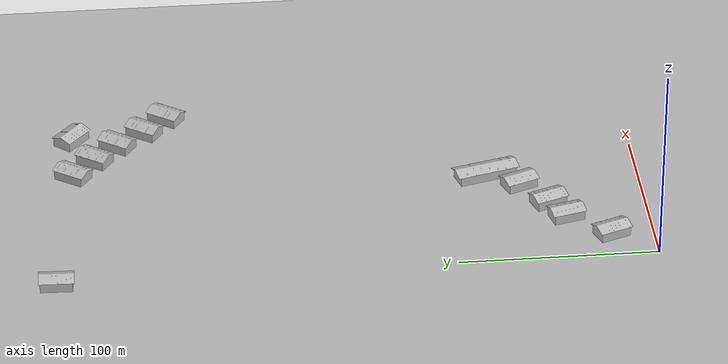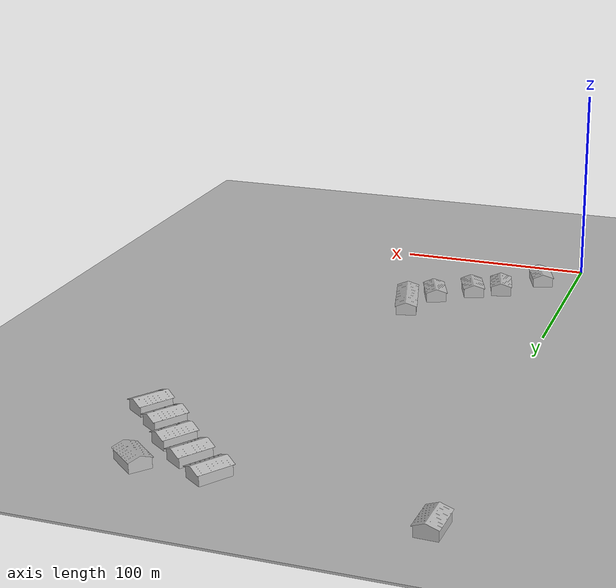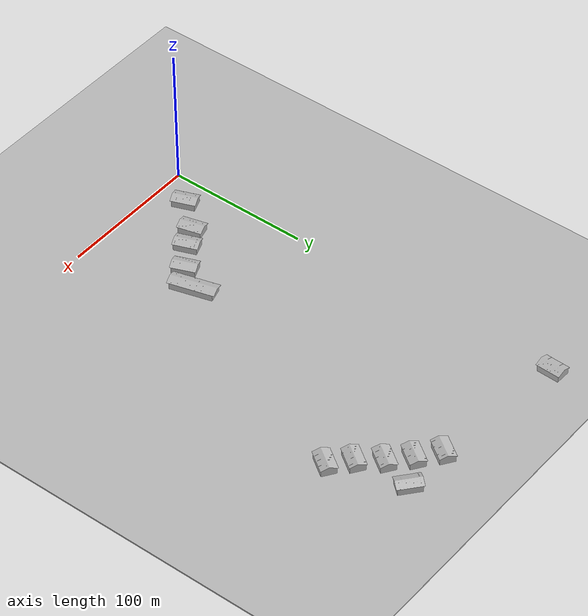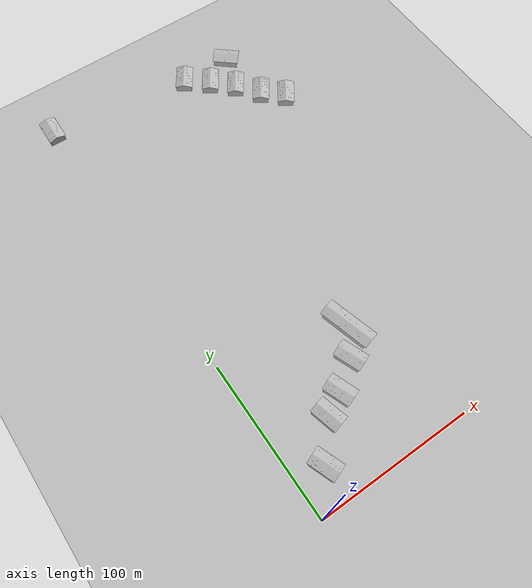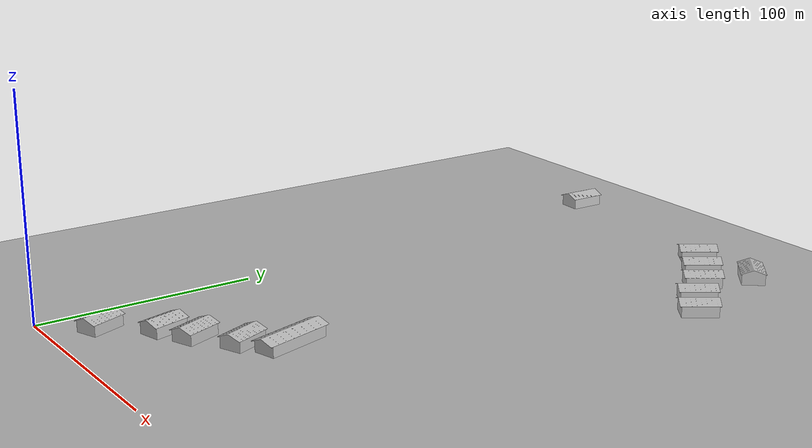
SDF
<sdf version="1.7">
 <world name="default">
  <model name="ground_plane">
   <static>1</static>
   <link name="link">
    <collision name="collision">
     <geometry><mesh><uri>model://ground_plane/scripts/plane.dae</uri><normal>0 0 1</normal></mesh></geometry>
     <surface><friction><ode><mu>100</mu><mu2>50</mu2></ode></friction></surface>
    </collision>
    <visual name="visual">
     <geometry><mesh><uri>model://ground_plane/scripts/plane.dae</uri><normal>0 0 1</normal></mesh></geometry>
     <material>
      <lighting>1</lighting>
      <script><uri>model://ground_plane/scripts/plane.jpg</uri><name>__default__</name></script>
      <shader type="pixel"/>
     </material>
    </visual>
   </link>
  </model>
  <model name="farmhouse_clone">
   <static>1</static>
   <link name="link_0">
    <inertial>
     <mass>1</mass>
     <inertia>
      <ixx>0.166667</ixx>
      <ixy>0</ixy>
      <ixz>0</ixz>
      <iyy>0.166667</iyy>
      <iyz>0</iyz>
      <izz>0.166667</izz>
     </inertia>
    </inertial>
    <pose>-0 -3e-06 0 0 -0 0</pose>
    <visual name="visual">
     <geometry><mesh><uri>model://farmhouse/scripts/farmhouse.dae</uri><scale>8 8 5</scale></mesh></geometry>
     <material>
      <lighting>1</lighting>
      <script><uri>model://farmhouse/scripts/farmhouse.jpg</uri><name>__default__</name></script>
      <shader type="pixel"/>
     </material>
    </visual>
    <collision name="collision">
     <geometry><mesh><uri>model://farmhouse/scripts/farmhouse.dae</uri><scale>8 8 5</scale></mesh></geometry>
     <surface>
      <friction>
       <ode><mu>1</mu><mu2>1</mu2><fdir1>0 0 0</fdir1><slip1>0</slip1><slip2>0</slip2></ode>
       <torsional>
        <coefficient>1</coefficient>
        <patch_radius>0</patch_radius>
        <surface_radius>0</surface_radius>
        <use_patch_radius>1</use_patch_radius>
        <ode><slip>0</slip></ode>
       </torsional>
      </friction>
      <bounce><restitution_coefficient>0</restitution_coefficient><threshold>1e+06</threshold></bounce>
      <contact>
       <collide_without_contact>0</collide_without_contact>
       <collide_without_contact_bitmask>1</collide_without_contact_bitmask>
       <collide_bitmask>1</collide_bitmask>
       <ode>
        <soft_cfm>0</soft_cfm>
        <soft_erp>0.2</soft_erp>
        <kp>1e+13</kp>
        <kd>1</kd>
        <max_vel>0.01</max_vel>
        <min_depth>0</min_depth>
       </ode>
       <bullet>
        <split_impulse>1</split_impulse>
        <split_impulse_penetration_threshold>-0.01</split_impulse_penetration_threshold>
        <soft_cfm>0</soft_cfm>
        <soft_erp>0.2</soft_erp>
        <kp>1e+13</kp>
        <kd>1</kd>
       </bullet>
      </contact>
     </surface>
    </collision>
   </link>
   <static>0</static>
   <pose>66.9059 61.4085 0 0 0 -1.19228</pose>
  </model>
  <model name="farmhouse2_clone">
   <static>1</static>
   <link name="link_0">
    <inertial>
     <mass>1</mass>
     <inertia>
      <ixx>0.166667</ixx>
      <ixy>0</ixy>
      <ixz>0</ixz>
      <iyy>0.166667</iyy>
      <iyz>0</iyz>
      <izz>0.166667</izz>
     </inertia>
    </inertial>
    <pose>-0 -3e-06 0 0 -0 0</pose>
    <visual name="visual">
     <geometry><mesh><uri>model://farmhouse2/scripts/farmhouse.dae</uri><scale>8 8 5</scale></mesh></geometry>
     <material>
      <lighting>1</lighting>
      <script><uri>model://farmhouse2/scripts/farmhouse.jpg</uri><name>__default__</name></script>
      <shader type="pixel"/>
     </material>
    </visual>
    <collision name="collision">
     <geometry><mesh><uri>model://farmhouse/scripts/farmhouse.dae</uri><scale>8 8 5</scale></mesh></geometry>
     <surface>
      <friction>
       <ode><mu>1</mu><mu2>1</mu2><fdir1>0 0 0</fdir1><slip1>0</slip1><slip2>0</slip2></ode>
       <torsional>
        <coefficient>1</coefficient>
        <patch_radius>0</patch_radius>
        <surface_radius>0</surface_radius>
        <use_patch_radius>1</use_patch_radius>
        <ode><slip>0</slip></ode>
       </torsional>
      </friction>
      <bounce><restitution_coefficient>0</restitution_coefficient><threshold>1e+06</threshold></bounce>
      <contact>
       <collide_without_contact>0</collide_without_contact>
       <collide_without_contact_bitmask>1</collide_without_contact_bitmask>
       <collide_bitmask>1</collide_bitmask>
       <ode>
        <soft_cfm>0</soft_cfm>
        <soft_erp>0.2</soft_erp>
        <kp>1e+13</kp>
        <kd>1</kd>
        <max_vel>0.01</max_vel>
        <min_depth>0</min_depth>
       </ode>
       <bullet>
        <split_impulse>1</split_impulse>
        <split_impulse_penetration_threshold>-0.01</split_impulse_penetration_threshold>
        <soft_cfm>0</soft_cfm>
        <soft_erp>0.2</soft_erp>
        <kp>1e+13</kp>
        <kd>1</kd>
       </bullet>
      </contact>
     </surface>
    </collision>
   </link>
   <static>0</static>
   <pose>49.6007 48.8831 0 0 0 -1.20661</pose>
  </model>
  <model name="farmhouse2_clone_clone">
   <static>1</static>
   <link name="link_0">
    <inertial>
     <mass>1</mass>
     <inertia>
      <ixx>0.166667</ixx>
      <ixy>0</ixy>
      <ixz>0</ixz>
      <iyy>0.166667</iyy>
      <iyz>0</iyz>
      <izz>0.166667</izz>
     </inertia>
    </inertial>
    <pose>-0 -3e-06 0 0 -0 0</pose>
    <visual name="visual">
     <geometry><mesh><uri>model://farmhouse2/scripts/farmhouse.dae</uri><scale>8 8 5</scale></mesh></geometry>
     <material>
      <lighting>1</lighting>
      <script><uri>model://farmhouse2/scripts/farmhouse.jpg</uri><name>__default__</name></script>
      <shader type="pixel"/>
     </material>
    </visual>
    <collision name="collision">
     <geometry><mesh><uri>model://farmhouse/scripts/farmhouse.dae</uri><scale>8 8 5</scale></mesh></geometry>
     <surface>
      <friction>
       <ode><mu>1</mu><mu2>1</mu2><fdir1>0 0 0</fdir1><slip1>0</slip1><slip2>0</slip2></ode>
       <torsional>
        <coefficient>1</coefficient>
        <patch_radius>0</patch_radius>
        <surface_radius>0</surface_radius>
        <use_patch_radius>1</use_patch_radius>
        <ode><slip>0</slip></ode>
       </torsional>
      </friction>
      <bounce><restitution_coefficient>0</restitution_coefficient><threshold>1e+06</threshold></bounce>
      <contact>
       <collide_without_contact>0</collide_without_contact>
       <collide_without_contact_bitmask>1</collide_without_contact_bitmask>
       <collide_bitmask>1</collide_bitmask>
       <ode>
        <soft_cfm>0</soft_cfm>
        <soft_erp>0.2</soft_erp>
        <kp>1e+13</kp>
        <kd>1</kd>
        <max_vel>0.01</max_vel>
        <min_depth>0</min_depth>
       </ode>
       <bullet>
        <split_impulse>1</split_impulse>
        <split_impulse_penetration_threshold>-0.01</split_impulse_penetration_threshold>
        <soft_cfm>0</soft_cfm>
        <soft_erp>0.2</soft_erp>
        <kp>1e+13</kp>
        <kd>1</kd>
       </bullet>
      </contact>
     </surface>
    </collision>
   </link>
   <static>0</static>
   <pose>18.3879 21.3115 0 0 0 -1.20661</pose>
  </model>
  <model name="farmhouse_clone_clone">
   <static>1</static>
   <link name="link_0">
    <inertial>
     <mass>1</mass>
     <inertia>
      <ixx>0.166667</ixx>
      <ixy>0</ixy>
      <ixz>0</ixz>
      <iyy>0.166667</iyy>
      <iyz>0</iyz>
      <izz>0.166667</izz>
     </inertia>
    </inertial>
    <pose>-0 -3e-06 0 0 -0 0</pose>
    <visual name="visual">
     <geometry><mesh><uri>model://farmhouse/scripts/farmhouse.dae</uri><scale>8 8 5</scale></mesh></geometry>
     <material>
      <lighting>1</lighting>
      <script><uri>model://farmhouse/scripts/farmhouse.jpg</uri><name>__default__</name></script>
      <shader type="pixel"/>
     </material>
    </visual>
    <collision name="collision">
     <geometry><mesh><uri>model://farmhouse/scripts/farmhouse.dae</uri><scale>8 8 5</scale></mesh></geometry>
     <surface>
      <friction>
       <ode><mu>1</mu><mu2>1</mu2><fdir1>0 0 0</fdir1><slip1>0</slip1><slip2>0</slip2></ode>
       <torsional>
        <coefficient>1</coefficient>
        <patch_radius>0</patch_radius>
        <surface_radius>0</surface_radius>
        <use_patch_radius>1</use_patch_radius>
        <ode><slip>0</slip></ode>
       </torsional>
      </friction>
      <bounce><restitution_coefficient>0</restitution_coefficient><threshold>1e+06</threshold></bounce>
      <contact>
       <collide_without_contact>0</collide_without_contact>
       <collide_without_contact_bitmask>1</collide_without_contact_bitmask>
       <collide_bitmask>1</collide_bitmask>
       <ode>
        <soft_cfm>0</soft_cfm>
        <soft_erp>0.2</soft_erp>
        <kp>1e+13</kp>
        <kd>1</kd>
        <max_vel>0.01</max_vel>
        <min_depth>0</min_depth>
       </ode>
       <bullet>
        <split_impulse>1</split_impulse>
        <split_impulse_penetration_threshold>-0.01</split_impulse_penetration_threshold>
        <soft_cfm>0</soft_cfm>
        <soft_erp>0.2</soft_erp>
        <kp>1e+13</kp>
        <kd>1</kd>
       </bullet>
      </contact>
     </surface>
    </collision>
   </link>
   <static>0</static>
   <pose>35.8615 41.5925 0 0 0 -1.31658</pose>
  </model>
  <model name="farmhouse1_clone">
   <static>1</static>
   <link name="link_0">
    <inertial>
     <mass>1</mass>
     <inertia>
      <ixx>0.166667</ixx>
      <ixy>0</ixy>
      <ixz>0</ixz>
      <iyy>0.166667</iyy>
      <iyz>0</iyz>
      <izz>0.166667</izz>
     </inertia>
    </inertial>
    <pose>-0 -3e-06 0 0 -0 0</pose>
    <visual name="visual">
     <geometry><mesh><uri>model://farmhouse1/scripts/farmhouse.dae</uri><scale>15 8 5</scale></mesh></geometry>
     <material>
      <lighting>1</lighting>
      <script><uri>model://farmhouse1/scripts/farmhouse.jpg</uri><name>__default__</name></script>
      <shader type="pixel"/>
     </material>
    </visual>
    <collision name="collision">
     <geometry><mesh><uri>model://farmhouse1/scripts/farmhouse.dae</uri><scale>15 8 5</scale></mesh></geometry>
     <surface>
      <friction>
       <ode><mu>1</mu><mu2>1</mu2><fdir1>0 0 0</fdir1><slip1>0</slip1><slip2>0</slip2></ode>
       <torsional>
        <coefficient>1</coefficient>
        <patch_radius>0</patch_radius>
        <surface_radius>0</surface_radius>
        <use_patch_radius>1</use_patch_radius>
        <ode><slip>0</slip></ode>
       </torsional>
      </friction>
      <bounce><restitution_coefficient>0</restitution_coefficient><threshold>1e+06</threshold></bounce>
      <contact>
       <collide_without_contact>0</collide_without_contact>
       <collide_without_contact_bitmask>1</collide_without_contact_bitmask>
       <collide_bitmask>1</collide_bitmask>
       <ode>
        <soft_cfm>0</soft_cfm>
        <soft_erp>0.2</soft_erp>
        <kp>1e+13</kp>
        <kd>1</kd>
        <max_vel>0.01</max_vel>
        <min_depth>0</min_depth>
       </ode>
       <bullet>
        <split_impulse>1</split_impulse>
        <split_impulse_penetration_threshold>-0.01</split_impulse_penetration_threshold>
        <soft_cfm>0</soft_cfm>
        <soft_erp>0.2</soft_erp>
        <kp>1e+13</kp>
        <kd>1</kd>
       </bullet>
      </contact>
     </surface>
    </collision>
   </link>
   <static>0</static>
   <pose>77.5442 77.3021 0 0 0 -1.30178</pose>
  </model>
  <model name="farmhouse3_clone">
   <static>1</static>
   <link name="link_0">
    <inertial>
     <mass>1</mass>
     <inertia>
      <ixx>0.166667</ixx>
      <ixy>0</ixy>
      <ixz>0</ixz>
      <iyy>0.166667</iyy>
      <iyz>0</iyz>
      <izz>0.166667</izz>
     </inertia>
    </inertial>
    <pose>-0 -3e-06 0 0 -0 0</pose>
    <visual name="visual">
     <geometry><mesh><uri>model://farmhouse3/scripts/farmhouse.dae</uri><scale>8 8 5</scale></mesh></geometry>
     <material>
      <lighting>1</lighting>
      <script><uri>model://farmhouse3/scripts/farmhouse.jpg</uri><name>__default__</name></script>
      <shader type="pixel"/>
     </material>
    </visual>
    <collision name="collision">
     <geometry><mesh><uri>model://farmhouse/scripts/farmhouse.dae</uri><scale>8 8 5</scale></mesh></geometry>
     <surface>
      <friction>
       <ode><mu>1</mu><mu2>1</mu2><fdir1>0 0 0</fdir1><slip1>0</slip1><slip2>0</slip2></ode>
       <torsional>
        <coefficient>1</coefficient>
        <patch_radius>0</patch_radius>
        <surface_radius>0</surface_radius>
        <use_patch_radius>1</use_patch_radius>
        <ode><slip>0</slip></ode>
       </torsional>
      </friction>
      <bounce><restitution_coefficient>0</restitution_coefficient><threshold>1e+06</threshold></bounce>
      <contact>
       <collide_without_contact>0</collide_without_contact>
       <collide_without_contact_bitmask>1</collide_without_contact_bitmask>
       <collide_bitmask>1</collide_bitmask>
       <ode>
        <soft_cfm>0</soft_cfm>
        <soft_erp>0.2</soft_erp>
        <kp>1e+13</kp>
        <kd>1</kd>
        <max_vel>0.01</max_vel>
        <min_depth>0</min_depth>
       </ode>
       <bullet>
        <split_impulse>1</split_impulse>
        <split_impulse_penetration_threshold>-0.01</split_impulse_penetration_threshold>
        <soft_cfm>0</soft_cfm>
        <soft_erp>0.2</soft_erp>
        <kp>1e+13</kp>
        <kd>1</kd>
       </bullet>
      </contact>
     </surface>
    </collision>
   </link>
   <static>0</static>
   <pose>109.267 274.04 0 0 -0 0.963687</pose>
  </model>
  <model name="farmhouse3_clone_0">
   <static>1</static>
   <link name="link_0">
    <inertial>
     <mass>1</mass>
     <inertia>
      <ixx>0.166667</ixx>
      <ixy>0</ixy>
      <ixz>0</ixz>
      <iyy>0.166667</iyy>
      <iyz>0</iyz>
      <izz>0.166667</izz>
     </inertia>
    </inertial>
    <pose>-0 -3e-06 0 0 -0 0</pose>
    <visual name="visual">
     <geometry><mesh><uri>model://farmhouse3/scripts/farmhouse.dae</uri><scale>8 8 5</scale></mesh></geometry>
     <material>
      <lighting>1</lighting>
      <script><uri>model://farmhouse3/scripts/farmhouse.jpg</uri><name>__default__</name></script>
      <shader type="pixel"/>
     </material>
    </visual>
    <collision name="collision">
     <geometry><mesh><uri>model://farmhouse/scripts/farmhouse.dae</uri><scale>8 8 5</scale></mesh></geometry>
     <surface>
      <friction>
       <ode><mu>1</mu><mu2>1</mu2><fdir1>0 0 0</fdir1><slip1>0</slip1><slip2>0</slip2></ode>
       <torsional>
        <coefficient>1</coefficient>
        <patch_radius>0</patch_radius>
        <surface_radius>0</surface_radius>
        <use_patch_radius>1</use_patch_radius>
        <ode><slip>0</slip></ode>
       </torsional>
      </friction>
      <bounce><restitution_coefficient>0</restitution_coefficient><threshold>1e+06</threshold></bounce>
      <contact>
       <collide_without_contact>0</collide_without_contact>
       <collide_without_contact_bitmask>1</collide_without_contact_bitmask>
       <collide_bitmask>1</collide_bitmask>
       <ode>
        <soft_cfm>0</soft_cfm>
        <soft_erp>0.2</soft_erp>
        <kp>1e+13</kp>
        <kd>1</kd>
        <max_vel>0.01</max_vel>
        <min_depth>0</min_depth>
       </ode>
       <bullet>
        <split_impulse>1</split_impulse>
        <split_impulse_penetration_threshold>-0.01</split_impulse_penetration_threshold>
        <soft_cfm>0</soft_cfm>
        <soft_erp>0.2</soft_erp>
        <kp>1e+13</kp>
        <kd>1</kd>
       </bullet>
      </contact>
     </surface>
    </collision>
   </link>
   <static>0</static>
   <pose>122.223 261.866 0 0 -0 0.963687</pose>
  </model>
  <model name="farmhouse3_clone_1">
   <static>1</static>
   <link name="link_0">
    <inertial>
     <mass>1</mass>
     <inertia>
      <ixx>0.166667</ixx>
      <ixy>0</ixy>
      <ixz>0</ixz>
      <iyy>0.166667</iyy>
      <iyz>0</iyz>
      <izz>0.166667</izz>
     </inertia>
    </inertial>
    <pose>-0 -3e-06 0 0 -0 0</pose>
    <visual name="visual">
     <geometry><mesh><uri>model://farmhouse3/scripts/farmhouse.dae</uri><scale>8 8 5</scale></mesh></geometry>
     <material>
      <lighting>1</lighting>
      <script><uri>model://farmhouse3/scripts/farmhouse.jpg</uri><name>__default__</name></script>
      <shader type="pixel"/>
     </material>
    </visual>
    <collision name="collision">
     <geometry><mesh><uri>model://farmhouse/scripts/farmhouse.dae</uri><scale>8 8 5</scale></mesh></geometry>
     <surface>
      <friction>
       <ode><mu>1</mu><mu2>1</mu2><fdir1>0 0 0</fdir1><slip1>0</slip1><slip2>0</slip2></ode>
       <torsional>
        <coefficient>1</coefficient>
        <patch_radius>0</patch_radius>
        <surface_radius>0</surface_radius>
        <use_patch_radius>1</use_patch_radius>
        <ode><slip>0</slip></ode>
       </torsional>
      </friction>
      <bounce><restitution_coefficient>0</restitution_coefficient><threshold>1e+06</threshold></bounce>
      <contact>
       <collide_without_contact>0</collide_without_contact>
       <collide_without_contact_bitmask>1</collide_without_contact_bitmask>
       <collide_bitmask>1</collide_bitmask>
       <ode>
        <soft_cfm>0</soft_cfm>
        <soft_erp>0.2</soft_erp>
        <kp>1e+13</kp>
        <kd>1</kd>
        <max_vel>0.01</max_vel>
        <min_depth>0</min_depth>
       </ode>
       <bullet>
        <split_impulse>1</split_impulse>
        <split_impulse_penetration_threshold>-0.01</split_impulse_penetration_threshold>
        <soft_cfm>0</soft_cfm>
        <soft_erp>0.2</soft_erp>
        <kp>1e+13</kp>
        <kd>1</kd>
       </bullet>
      </contact>
     </surface>
    </collision>
   </link>
   <static>0</static>
   <pose>133.635 247.464 0 0 -0 0.963687</pose>
  </model>
  <model name="farmhouse3_clone_2">
   <static>1</static>
   <link name="link_0">
    <inertial>
     <mass>1</mass>
     <inertia>
      <ixx>0.166667</ixx>
      <ixy>0</ixy>
      <ixz>0</ixz>
      <iyy>0.166667</iyy>
      <iyz>0</iyz>
      <izz>0.166667</izz>
     </inertia>
    </inertial>
    <pose>-0 -3e-06 0 0 -0 0</pose>
    <visual name="visual">
     <geometry><mesh><uri>model://farmhouse3/scripts/farmhouse.dae</uri><scale>8 8 5</scale></mesh></geometry>
     <material>
      <lighting>1</lighting>
      <script><uri>model://farmhouse3/scripts/farmhouse.jpg</uri><name>__default__</name></script>
      <shader type="pixel"/>
     </material>
    </visual>
    <collision name="collision">
     <geometry><mesh><uri>model://farmhouse/scripts/farmhouse.dae</uri><scale>8 8 5</scale></mesh></geometry>
     <surface>
      <friction>
       <ode><mu>1</mu><mu2>1</mu2><fdir1>0 0 0</fdir1><slip1>0</slip1><slip2>0</slip2></ode>
       <torsional>
        <coefficient>1</coefficient>
        <patch_radius>0</patch_radius>
        <surface_radius>0</surface_radius>
        <use_patch_radius>1</use_patch_radius>
        <ode><slip>0</slip></ode>
       </torsional>
      </friction>
      <bounce><restitution_coefficient>0</restitution_coefficient><threshold>1e+06</threshold></bounce>
      <contact>
       <collide_without_contact>0</collide_without_contact>
       <collide_without_contact_bitmask>1</collide_without_contact_bitmask>
       <collide_bitmask>1</collide_bitmask>
       <ode>
        <soft_cfm>0</soft_cfm>
        <soft_erp>0.2</soft_erp>
        <kp>1e+13</kp>
        <kd>1</kd>
        <max_vel>0.01</max_vel>
        <min_depth>0</min_depth>
       </ode>
       <bullet>
        <split_impulse>1</split_impulse>
        <split_impulse_penetration_threshold>-0.01</split_impulse_penetration_threshold>
        <soft_cfm>0</soft_cfm>
        <soft_erp>0.2</soft_erp>
        <kp>1e+13</kp>
        <kd>1</kd>
       </bullet>
      </contact>
     </surface>
    </collision>
   </link>
   <static>0</static>
   <pose>146.336 235.582 0 0 -0 0.963687</pose>
  </model>
  <model name="farmhouse2_clone_clone_0">
   <static>1</static>
   <link name="link_0">
    <inertial>
     <mass>1</mass>
     <inertia>
      <ixx>0.166667</ixx>
      <ixy>0</ixy>
      <ixz>0</ixz>
      <iyy>0.166667</iyy>
      <iyz>0</iyz>
      <izz>0.166667</izz>
     </inertia>
    </inertial>
    <pose>-0 -3e-06 0 0 -0 0</pose>
    <visual name="visual">
     <geometry><mesh><uri>model://farmhouse2/scripts/farmhouse.dae</uri><scale>8 8 5</scale></mesh></geometry>
     <material>
      <lighting>1</lighting>
      <script><uri>model://farmhouse2/scripts/farmhouse.jpg</uri><name>__default__</name></script>
      <shader type="pixel"/>
     </material>
    </visual>
    <collision name="collision">
     <geometry><mesh><uri>model://farmhouse/scripts/farmhouse.dae</uri><scale>8 8 5</scale></mesh></geometry>
     <surface>
      <friction>
       <ode><mu>1</mu><mu2>1</mu2><fdir1>0 0 0</fdir1><slip1>0</slip1><slip2>0</slip2></ode>
       <torsional>
        <coefficient>1</coefficient>
        <patch_radius>0</patch_radius>
        <surface_radius>0</surface_radius>
        <use_patch_radius>1</use_patch_radius>
        <ode><slip>0</slip></ode>
       </torsional>
      </friction>
      <bounce><restitution_coefficient>0</restitution_coefficient><threshold>1e+06</threshold></bounce>
      <contact>
       <collide_without_contact>0</collide_without_contact>
       <collide_without_contact_bitmask>1</collide_without_contact_bitmask>
       <collide_bitmask>1</collide_bitmask>
       <ode>
        <soft_cfm>0</soft_cfm>
        <soft_erp>0.2</soft_erp>
        <kp>1e+13</kp>
        <kd>1</kd>
        <max_vel>0.01</max_vel>
        <min_depth>0</min_depth>
       </ode>
       <bullet>
        <split_impulse>1</split_impulse>
        <split_impulse_penetration_threshold>-0.01</split_impulse_penetration_threshold>
        <soft_cfm>0</soft_cfm>
        <soft_erp>0.2</soft_erp>
        <kp>1e+13</kp>
        <kd>1</kd>
       </bullet>
      </contact>
     </surface>
    </collision>
   </link>
   <static>0</static>
   <pose>129.668 285.17 0 0 0 -0.699699</pose>
  </model>
  <model name="farmhouse2_clone_clone_0_clone">
   <static>1</static>
   <link name="link_0">
    <inertial>
     <mass>1</mass>
     <inertia>
      <ixx>0.166667</ixx>
      <ixy>0</ixy>
      <ixz>0</ixz>
      <iyy>0.166667</iyy>
      <iyz>0</iyz>
      <izz>0.166667</izz>
     </inertia>
    </inertial>
    <pose>-0 -3e-06 0 0 -0 0</pose>
    <visual name="visual">
     <geometry><mesh><uri>model://farmhouse2/scripts/farmhouse.dae</uri><scale>8 8 5</scale></mesh></geometry>
     <material>
      <lighting>1</lighting>
      <script><uri>model://farmhouse2/scripts/farmhouse.jpg</uri><name>__default__</name></script>
      <shader type="pixel"/>
     </material>
    </visual>
    <collision name="collision">
     <geometry><mesh><uri>model://farmhouse/scripts/farmhouse.dae</uri><scale>8 8 5</scale></mesh></geometry>
     <surface>
      <friction>
       <ode><mu>1</mu><mu2>1</mu2><fdir1>0 0 0</fdir1><slip1>0</slip1><slip2>0</slip2></ode>
       <torsional>
        <coefficient>1</coefficient>
        <patch_radius>0</patch_radius>
        <surface_radius>0</surface_radius>
        <use_patch_radius>1</use_patch_radius>
        <ode><slip>0</slip></ode>
       </torsional>
      </friction>
      <bounce><restitution_coefficient>0</restitution_coefficient><threshold>1e+06</threshold></bounce>
      <contact>
       <collide_without_contact>0</collide_without_contact>
       <collide_without_contact_bitmask>1</collide_without_contact_bitmask>
       <collide_bitmask>1</collide_bitmask>
       <ode>
        <soft_cfm>0</soft_cfm>
        <soft_erp>0.2</soft_erp>
        <kp>1e+13</kp>
        <kd>1</kd>
        <max_vel>0.01</max_vel>
        <min_depth>0</min_depth>
       </ode>
       <bullet>
        <split_impulse>1</split_impulse>
        <split_impulse_penetration_threshold>-0.01</split_impulse_penetration_threshold>
        <soft_cfm>0</soft_cfm>
        <soft_erp>0.2</soft_erp>
        <kp>1e+13</kp>
        <kd>1</kd>
       </bullet>
      </contact>
     </surface>
    </collision>
   </link>
   <static>0</static>
   <pose>-1.76311 297.684 0 0 0 -1.60431</pose>
  </model>
  <model name="farmhouse3_clone_clone">
   <static>1</static>
   <link name="link_0">
    <inertial>
     <mass>1</mass>
     <inertia>
      <ixx>0.166667</ixx>
      <ixy>0</ixy>
      <ixz>0</ixz>
      <iyy>0.166667</iyy>
      <iyz>0</iyz>
      <izz>0.166667</izz>
     </inertia>
    </inertial>
    <pose>-0 -3e-06 0 0 -0 0</pose>
    <visual name="visual">
     <geometry><mesh><uri>model://farmhouse3/scripts/farmhouse.dae</uri><scale>8 8 5</scale></mesh></geometry>
     <material>
      <lighting>1</lighting>
      <script><uri>model://farmhouse3/scripts/farmhouse.jpg</uri><name>__default__</name></script>
      <shader type="pixel"/>
     </material>
    </visual>
    <collision name="collision">
     <geometry><mesh><uri>model://farmhouse/scripts/farmhouse.dae</uri><scale>8 8 5</scale></mesh></geometry>
     <surface>
      <friction>
       <ode><mu>1</mu><mu2>1</mu2><fdir1>0 0 0</fdir1><slip1>0</slip1><slip2>0</slip2></ode>
       <torsional>
        <coefficient>1</coefficient>
        <patch_radius>0</patch_radius>
        <surface_radius>0</surface_radius>
        <use_patch_radius>1</use_patch_radius>
        <ode><slip>0</slip></ode>
       </torsional>
      </friction>
      <bounce><restitution_coefficient>0</restitution_coefficient><threshold>1e+06</threshold></bounce>
      <contact>
       <collide_without_contact>0</collide_without_contact>
       <collide_without_contact_bitmask>1</collide_without_contact_bitmask>
       <collide_bitmask>1</collide_bitmask>
       <ode>
        <soft_cfm>0</soft_cfm>
        <soft_erp>0.2</soft_erp>
        <kp>1e+13</kp>
        <kd>1</kd>
        <max_vel>0.01</max_vel>
        <min_depth>0</min_depth>
       </ode>
       <bullet>
        <split_impulse>1</split_impulse>
        <split_impulse_penetration_threshold>-0.01</split_impulse_penetration_threshold>
        <soft_cfm>0</soft_cfm>
        <soft_erp>0.2</soft_erp>
        <kp>1e+13</kp>
        <kd>1</kd>
       </bullet>
      </contact>
     </surface>
    </collision>
   </link>
   <static>0</static>
   <pose>95.1583 285.599 0 0 -0 0.963687</pose>
  </model>
 </world>
</sdf>
